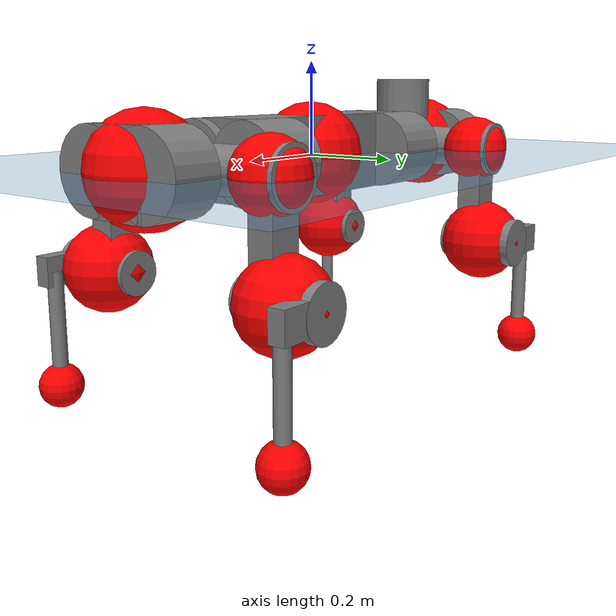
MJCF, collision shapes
<mujoco model="anymal_c">
  <compiler angle="radian" assetdir="assets" balanceinertia="true" inertiafromgeom="false"/>

  <option timestep="0.005" density="1.2" viscosity="2e-05"/>

  <size nkey="1"/>

  <visual>
    <quality shadowsize="8192"/>
    <map shadowclip="0.5"/>
  </visual>

  <default>
    <default class="/">
      <material specular="0" shininess="0.25"/>
      <geom contype="0" conaffinity="0" group="1" solref="-1000 -80"/>
      <site size="0.01 0.005 0.005" group="5"/>
      <general forcelimited="true" forcerange="-80 80" biastype="affine" gainprm="80" biasprm="0 -80 -2"/>
      <default class="anymal_c">
        <joint armature="0.01" damping="0.01" frictionloss="0.1"/>
        <default class="visual">
          <geom type="mesh" group="2"/>
          <default class="visual_zflip"/>
        </default>
        <default class="collision">
          <geom type="cylinder" group="3"/>
          <default class="foot">
            <geom size="0.03 0 0" type="sphere" condim="6" priority="1" friction="0.8 0.02 0.01" solimp="0.015 1 0.03"/>
          </default>
        </default>
      </default>
      <default class="reward_collision_sphere">
        <geom group="5" rgba="1 0 0 1"/>
      </default>
    </default>
  </default>

  <asset>
    <texture type="skybox" colorspace="auto" name="//unnamed_texture_0" builtin="gradient" rgb1="0.95 0.95 0.95" rgb2="0.95 0.95 0.95" width="100" height="600"/>
    <texture type="2d" colorspace="auto" name="texplane" builtin="checker" rgb1="0.345 0.575 0.748" rgb2="0.345 0.575 0.748" markrgb="1 1 1" width="512" height="512"/>
    <texture type="2d" colorspace="linear" name="base" file="base.png"/>
    <texture type="2d" colorspace="linear" name="top_shell" file="top_shell.png"/>
    <texture type="2d" colorspace="linear" name="bottom_shell" file="bottom_shell.png"/>
    <texture type="2d" colorspace="linear" name="remote" file="remote.png"/>
    <texture type="2d" colorspace="linear" name="hatch" file="hatch.png"/>
    <texture type="2d" colorspace="linear" name="handle" file="handle.png"/>
    <texture type="2d" colorspace="linear" name="face" file="face.png"/>
    <texture type="2d" colorspace="linear" name="battery" file="battery.png"/>
    <texture type="2d" colorspace="linear" name="lidar_cage" file="lidar_cage.png"/>
    <texture type="2d" colorspace="linear" name="depth_camera" file="depth_camera.png"/>
    <texture type="2d" colorspace="linear" name="wide_angle_camera" file="wide_angle_camera.png"/>
    <texture type="2d" colorspace="linear" name="lidar" file="lidar.png"/>
    <texture type="2d" colorspace="linear" name="drive" file="drive.png"/>
    <texture type="2d" colorspace="linear" name="hip_l" file="hip_l.png"/>
    <texture type="2d" colorspace="linear" name="shank_l" file="shank_l.png"/>
    <texture type="2d" colorspace="linear" name="foot" file="foot.png"/>
    <texture type="2d" colorspace="linear" name="thigh" file="thigh.png"/>
    <texture type="2d" colorspace="linear" name="shank_r" file="shank_r.png"/>
    <texture type="2d" colorspace="linear" name="hip_r" file="hip_r.png"/>
    <material name="MatPlane" class="/" texture="texplane" texuniform="true" texrepeat="2 2" specular="0.9" shininess="0.5"/>
    <material name="black_plastic" class="/" rgba="0.007 0.007 0.007 1"/>
    <material name="green" class="/" rgba="0.052 0.178 0.033 1"/>
    <material name="red" class="/" rgba="0.178 0.006 0.005 1"/>
    <material name="yellow" class="/" rgba="0.178 0.119 0.006 1"/>
    <material name="lwl" class="/" rgba="0.8 0.8 0.8 1"/>
    <material name="base" class="/" texture="base"/>
    <material name="top_shell" class="/" texture="top_shell"/>
    <material name="bottom_shell" class="/" texture="bottom_shell"/>
    <material name="hip_l" class="/" texture="hip_l"/>
    <material name="thigh" class="/" texture="thigh"/>
    <material name="shank_l" class="/" texture="shank_l"/>
    <material name="foot" class="/" texture="foot"/>
    <material name="hip_r" class="/" texture="hip_r"/>
    <material name="shank" class="/" texture="shank_r"/>
    <material name="hatch" class="/" texture="hatch"/>
    <material name="remote" class="/" texture="remote"/>
    <material name="handle" class="/" texture="handle"/>
    <material name="face" class="/" texture="face"/>
    <material name="depth_camera" class="/" texture="depth_camera"/>
    <material name="wide_angle_camera" class="/" texture="wide_angle_camera"/>
    <material name="battery" class="/" texture="battery"/>
    <material name="lidar_cage" class="/" texture="lidar_cage"/>
    <material name="lidar" class="/" texture="lidar"/>
    <material name="drive" class="/" texture="drive"/>
    <mesh name="base_0" class="/" file="base_0.obj"/>
    <mesh name="base_1" class="/" file="base_1.obj"/>
    <mesh name="base_2" class="/" file="base_2.obj"/>
    <mesh name="base_3" class="/" file="base_3.obj"/>
    <mesh name="base_4" class="/" file="base_4.obj"/>
    <mesh name="base_5" class="/" file="base_5.obj"/>
    <mesh name="top_shell" class="/" file="top_shell.obj"/>
    <mesh name="bottom_shell" class="/" file="bottom_shell.obj"/>
    <mesh name="remote" class="/" file="remote.obj"/>
    <mesh name="handle" class="/" file="handle.obj"/>
    <mesh name="face" class="/" file="face.obj"/>
    <mesh name="wide_angle_camera" class="/" file="wide_angle_camera.obj"/>
    <mesh name="depth_camera" class="/" file="depth_camera.obj"/>
    <mesh name="battery" class="/" file="battery.obj"/>
    <mesh name="lidar_cage" class="/" file="lidar_cage.obj"/>
    <mesh name="lidar" class="/" file="lidar.obj"/>
    <mesh name="drive" class="/" file="drive.obj"/>
    <mesh name="hip_l" class="/" file="hip_l.obj"/>
    <mesh name="thigh" class="/" file="thigh.obj"/>
    <mesh name="shank_l" class="/" file="shank_l.obj"/>
    <mesh name="foot" class="/" file="foot.obj"/>
    <mesh name="hip_r" class="/" file="hip_r.obj"/>
    <mesh name="hatch" class="/" file="hatch.obj"/>
    <mesh name="shank_r" class="/" file="shank_r.obj"/>
  </asset>

  <worldbody>
    <geom name="floor" class="/" size="100 100 0.125" type="plane" group="0" material="MatPlane"/>
    <light name="toplight_shadow" class="/" pos="0 0 5" dir="0.0990148 0.0990148 -0.990148" type="directional" ambient="0.04 0.04 0.04" diffuse="0.55 0.55 0.55" specular="0.12 0.12 0.12"/>
    <light name="toplight_fill" class="/" pos="0 0 5" dir="0.0990148 0.0990148 -0.990148" type="directional" castshadow="false" ambient="0.04 0.04 0.04" diffuse="0.3 0.3 0.3" specular="0.08 0.08 0.08"/>
    <body name="trunk" childclass="anymal_c" pos="0.00206575 -0.000827999 0.0046297" quat="0.999998 0.00107442 -0.000515834 -0.00141673">
      <inertial pos="0.00328434 -0.00217204 0.0322533" quat="0.505876 0.497027 0.509236 0.487578" mass="14.4572" diaginertia="0.718411 0.469063 0.0569302"/>
      <joint name="//unnamed_joint_0" type="free" armature="0" damping="0" frictionloss="0"/>
      <geom name="//unnamed_geom_1" class="visual" material="green" mesh="base_0"/>
      <geom name="//unnamed_geom_2" class="visual" material="yellow" mesh="base_1"/>
      <geom name="//unnamed_geom_3" class="visual" material="red" mesh="base_2"/>
      <geom name="//unnamed_geom_4" class="visual" material="black_plastic" mesh="base_3"/>
      <geom name="//unnamed_geom_5" class="visual" material="lwl" mesh="base_4"/>
      <geom name="//unnamed_geom_6" class="visual" material="base" mesh="base_5"/>
      <geom name="trunk_1" class="collision" size="0.268867 0.064899 0.0834416" type="box"/>
      <geom name="trunk_2" class="collision" size="0.0834416 0.0672168" pos="0.226898 0.067464 0" quat="0.707107 0 0.707107 0"/>
      <geom name="trunk_3" class="collision" size="0.0834416 0.0672168" pos="-0.226898 0.067464 0" quat="0.707107 0 0.707107 0"/>
      <geom name="trunk_4" class="collision" size="0.0834416 0.0672168" pos="0.226898 -0.067464 0" quat="0.707107 0 0.707107 0"/>
      <geom name="trunk_5" class="collision" size="0.0834416 0.0672168" pos="-0.226898 -0.067464 0" quat="0.707107 0 0.707107 0"/>
      <geom name="//unnamed_geom_12" class="visual" material="top_shell" mesh="top_shell"/>
      <geom name="//unnamed_geom_13" class="visual" material="bottom_shell" mesh="bottom_shell"/>
      <geom name="//unnamed_geom_14" class="visual" material="remote" mesh="remote"/>
      <geom name="//unnamed_geom_15" class="visual" material="handle" mesh="handle"/>
      <geom name="//unnamed_geom_16" class="visual" pos="0.432411 0 0" quat="1 0 0 0" material="face" mesh="face"/>
      <geom name="trunk_6" class="collision" size="0.0509921 0.064899 0.0834416" pos="0.489787 0 0" type="box"/>
      <geom name="//unnamed_geom_18" class="collision" size="0.0834416 0.0509921" pos="0.489787 0.067464 0" quat="0.707107 0 0.707107 0"/>
      <geom name="//unnamed_geom_19" class="collision" size="0.0834416 0.0509921" pos="0.489787 -0.067464 0" quat="0.707107 0 0.707107 0"/>
      <geom name="//unnamed_geom_20" class="visual" pos="0.481587 0 -0.0205697" quat="0.965926 0 0.258819 0" material="depth_camera" mesh="depth_camera"/>
      <geom name="//unnamed_geom_21" class="visual" pos="0.535167 0 0.0115928" material="wide_angle_camera" mesh="wide_angle_camera"/>
      <geom name="//unnamed_geom_22" class="visual_zflip" pos="-0.432411 0 0" quat="0 0 0 1" material="face" mesh="face"/>
      <geom name="trunk_7" class="collision" size="0.0509921 0.064899 0.0834416" pos="-0.489787 0 0" quat="0 0 0 1" type="box"/>
      <geom name="//unnamed_geom_24" class="collision" size="0.0834416 0.0509921" pos="-0.489787 -0.067464 0" quat="0 -0.707107 0 0.707107"/>
      <geom name="//unnamed_geom_25" class="collision" size="0.0834416 0.0509921" pos="-0.489787 0.067464 0" quat="0 -0.707107 0 0.707107"/>
      <geom name="//unnamed_geom_26" class="visual" pos="-0.481587 0 -0.0205697" quat="0 -0.258819 0 0.965926" material="depth_camera" mesh="depth_camera"/>
      <geom name="//unnamed_geom_27" class="visual_zflip" pos="-0.535167 0 0.0115928" quat="0 0 0 1" material="wide_angle_camera" mesh="wide_angle_camera"/>
      <geom name="//unnamed_geom_28" class="visual" material="battery" mesh="battery"/>
      <geom name="//unnamed_geom_29" class="visual" pos="0 0.0726364 0.0245394" quat="0.683013 -0.183013 0.183013 0.683013" material="depth_camera" mesh="depth_camera"/>
      <geom name="//unnamed_geom_30" class="visual" pos="0 -0.0726364 0.0245394" quat="0.683013 0.183013 0.183013 -0.683013" material="depth_camera" mesh="depth_camera"/>
      <geom name="//unnamed_geom_31" class="visual" pos="-0.379729 0 0.0569187" quat="1 0 0 0" material="lidar_cage" mesh="lidar_cage"/>
      <geom name="trunk_8" class="collision" size="0.064899 0.0556277" pos="-0.379729 0 0.103383"/>
      <geom name="//unnamed_geom_33" class="visual" pos="-0.379729 -3.12093e-05 0.11012" quat="0.707107 0 0 -0.707107" material="lidar" mesh="lidar"/>
      <geom name="//unnamed_geom_34" class="visual" pos="0.312859 0.100165 3.26663e-09" quat="0.258819 0.965926 0 0" material="drive" mesh="drive"/>
      <geom name="//unnamed_geom_35" class="visual" pos="0.312859 -0.100165 -3.26663e-09" quat="0.258819 -0.965926 0 0" material="drive" mesh="drive"/>
      <geom name="//unnamed_geom_36" class="visual" pos="-0.312859 0.100165 -3.26663e-09" quat="0 0 0.965926 -0.258819" material="drive" mesh="drive"/>
      <geom name="//unnamed_geom_37" class="visual" pos="-0.312859 -0.100165 3.26663e-09" quat="0 0 -0.965926 -0.258819" material="drive" mesh="drive"/>
      <geom name="//unnamed_geom_38" class="visual" pos="0.121012 0 0.0565315" quat="1 0 0 0" material="hatch" mesh="hatch"/>
      <geom name="//unnamed_geom_39" class="reward_collision_sphere" size="0.111255"/>
      <geom name="//unnamed_geom_40" class="reward_collision_sphere" size="0.111255" pos="0.469445 0 0"/>
      <geom name="//unnamed_geom_41" class="reward_collision_sphere" size="0.111255" pos="-0.469445 0 0"/>
      <site name="imu" pos="0.271904 0.0100441 0.0437852" size="0.00927129"/>
      <camera name="track" pos="0 -1.92754 0" quat="0.707107 0.707107 0 0" mode="trackcom"/>
      <camera name="ego_camera" pos="0.469445 0 -0.0309761" quat="-0.5 -0.5 0.5 0.5"/>
      <body name="LF_HIP" pos="0.31398 0.103139 0.000366157" quat="0.258849 0.965918 -1.97999e-05 -1.98569e-06">
        <inertial pos="0.0623442 -0.0152689 -0.00204712" quat="-0.110075 0.718704 -0.140531 0.672011" mass="2.20167" diaginertia="0.00709273 0.00394092 0.000907272"/>
        <joint name="LF_HAA" pos="0 0 0" axis="0.999907 0.00789012 -0.0111282" stiffness="0.000858042" range="-0.707889 0.506133" armature="0.0094158" damping="0.0123643" frictionloss="0.0966939"/>
        <geom name="//unnamed_geom_42" class="visual" pos="0 0.000192161 -3.15623e-05" quat="0.258819 -0.965926 0 0" material="hip_l" mesh="hip_l"/>
        <geom name="//unnamed_geom_43" class="visual" pos="0.0624883 -0.0746047 -0.0416724" quat="0.183013 -0.683013 0.683013 0.183013" material="drive" mesh="drive"/>
        <geom name="//unnamed_geom_44" class="collision" size="0.0463564 0.064899" pos="0.0624883 -0.0115265 -0.00534726" quat="-0.353553 -0.612372 0.612372 -0.353553"/>
        <body name="LF_THIGH" pos="0.0644811 -0.0701365 -0.0357047" quat="0.183046 -0.683014 0.683011 0.182982">
          <inertial pos="0.0323039 -0.000538035 -0.191006" quat="0.993166 0.00566202 -0.0833821 0.0814637" mass="2.60958" diaginertia="0.0398489 0.0256305 0.0012337"/>
          <joint name="LF_HFE" pos="0 0 0" axis="0.999999 0.000337943 -0.000957164" stiffness="0.000545135" range="-3.15582 3.13279" armature="0.00968473" damping="0.00406794" frictionloss="0.0933811"/>
          <geom name="//unnamed_geom_45" class="visual" pos="0.00158052 2.49052e-06 0" quat="0.707107 0 0 -0.707107" material="thigh" mesh="thigh"/>
          <geom name="//unnamed_geom_46" class="collision" size="0.0602634 0.0370851" pos="0.0417284 0 0" quat="0.5 0.5 -0.5 -0.5"/>
          <geom name="//unnamed_geom_47" class="collision" size="0.0347673 0.0278139 0.131016" pos="0.0312963 0 -0.109434" quat="0.707107 0 0 -0.707107" type="box"/>
          <geom name="//unnamed_geom_48" class="visual" pos="0.104634 0 -0.220705" quat="1 0 0 0" material="drive" mesh="drive"/>
          <geom name="//unnamed_geom_49" class="collision" size="0.0463564 0.064899" pos="0.0316093 0 -0.220705" quat="0.707107 0 0.707107 0"/>
          <geom name="//unnamed_geom_50" class="reward_collision_sphere" size="0.0741703" pos="0.0260803 0 0"/>
          <body name="LF_SHANK" pos="0.107816 -0.00213678 -0.220304" quat="1 -0.000119947 1.39386e-05 4.94638e-05">
            <inertial pos="0.011411 -0.0550203 -0.0629444" quat="0.992673 -0.118343 -0.00335927 -0.0241584" mass="0.462433" diaginertia="0.0130362 0.00780741 0.00031329"/>
            <joint name="LF_KFE" pos="0 0 0" axis="0.999994 -0.000460355 -0.00346355" range="-3.03067 3.14802" armature="0.00829697" damping="0" frictionloss="0.0695588"/>
            <geom name="//unnamed_geom_51" class="visual" pos="0.000515372 0.00274799 0" quat="0.707107 0 0 -0.707107" material="shank_l" mesh="shank_l"/>
            <geom name="LF_kfe_act" class="collision" size="0.0556277 0.0185426" pos="0.0208642 0 0" quat="0.5 0.5 -0.5 -0.5"/>
            <geom name="//unnamed_geom_53" class="collision" size="0.053309 0.0312906 0.0176154" pos="0.0208642 -0.0554159 0" quat="0.5 0.5 -0.5 -0.5" type="box"/>
            <geom name="//unnamed_geom_54" class="visual" pos="0.0136138 -0.0838782 -0.261725" quat="0.382683 0 0 -0.92388" material="foot" mesh="foot"/>
            <geom name="LF_calf" class="collision" size="0.0162248 0.130959" pos="0.0136139 -0.0847637 -0.130863" quat="0.707107 0 0 -0.707107"/>
            <geom name="LF_foot" class="foot" size="0.0316054" pos="0.0136139 -0.0847637 -0.244301" quat="0.707107 0 0 -0.707107"/>
            <geom name="//unnamed_geom_57" class="reward_collision_sphere" size="0.0927129" pos="-0.0521605 0 0"/>
            <geom name="//unnamed_geom_58" class="reward_collision_sphere" size="0.0463564" pos="0.0136139 -0.0847637 -0.244301"/>
            <site name="LF_foot" class="foot" pos="0.0136139 -0.0847637 -0.244301" quat="0.707107 0 0 -0.707107" size="0.00927129"/>
          </body>
        </body>
      </body>
      <body name="RF_HIP" pos="0.312493 -0.100689 0.00188457" quat="0.26024 -0.965542 -0.00163609 0.00145171">
        <inertial pos="0.0573295 0.015275 -0.00507551" quat="0.131938 0.668911 0.148763 0.716254" mass="2.02138" diaginertia="0.00724036 0.00397814 0.000914087"/>
        <joint name="RF_HAA" pos="0 0 0" axis="0.999997 0.00169104 0.00160237" stiffness="0.00736128" range="-0.400523 0.706106" armature="0.0103392" damping="0.00811682" frictionloss="0.0918771"/>
        <geom name="//unnamed_geom_59" class="visual" pos="0 -0.000192159 -3.15622e-05" quat="0.258819 0.965926 0 0" material="hip_r" mesh="hip_r"/>
        <geom name="//unnamed_geom_60" class="visual" pos="0.0624883 0.0746047 -0.0416724" quat="0.183013 0.683013 0.683013 -0.183013" material="drive" mesh="drive"/>
        <geom name="//unnamed_geom_61" class="collision" size="0.0463564 0.064899" pos="0.0624883 0.0115265 -0.00534726" quat="-0.353553 0.612372 0.612372 0.353553"/>
        <body name="RF_THIGH" pos="0.0626767 0.069489 -0.0348594" quat="0.183205 0.683228 0.682763 -0.182946">
          <inertial pos="0.0309485 -0.000827766 -0.191994" quat="0.992123 -0.00607447 -0.0756263 0.099682" mass="2.40647" diaginertia="0.0376516 0.0254928 0.00118978"/>
          <joint name="RF_HFE" pos="0 0 0" axis="0.999979 0.00257875 0.00586419" range="-3.14281 3.12923" armature="0.00848817" damping="0.036256" frictionloss="0.100599"/>
          <geom name="//unnamed_geom_62" class="visual" pos="0.00158052 2.49052e-06 0" quat="0.707107 0 0 -0.707107" material="thigh" mesh="thigh"/>
          <geom name="//unnamed_geom_63" class="collision" size="0.0602634 0.0370851" pos="0.0417284 0 0" quat="0.5 0.5 0.5 0.5"/>
          <geom name="//unnamed_geom_64" class="collision" size="0.0347673 0.0278139 0.131016" pos="0.0312963 0 -0.109434" quat="0.707107 0 0 0.707107" type="box"/>
          <geom name="//unnamed_geom_65" class="visual" pos="0.104634 0 -0.220705" quat="1 0 0 0" material="drive" mesh="drive"/>
          <geom name="//unnamed_geom_66" class="collision" size="0.0463564 0.064899" pos="0.0316093 0 -0.220705" quat="0.707107 0 0.707107 0"/>
          <geom name="//unnamed_geom_67" class="reward_collision_sphere" size="0.0741703" pos="0.0260803 0 0"/>
          <body name="RF_SHANK" pos="0.108551 0.00162949 -0.219531" quat="0.999999 0.000991328 0.000332754 0.000693691">
            <inertial pos="0.00353808 0.0624603 -0.0640615" quat="0.993702 0.10364 0.0184473 0.0384144" mass="0.475206" diaginertia="0.0129329 0.00773513 0.000325625"/>
            <joint name="RF_KFE" pos="0 0 0" axis="0.999896 -0.0132671 0.00564948" range="-3.12195 3.09519" armature="0.00977597" damping="0.0102017" frictionloss="0.0873062"/>
            <geom name="//unnamed_geom_68" class="visual" pos="0.000515369 -0.00274798 0" quat="0.707107 0 0 0.707107" material="shank" mesh="shank_r"/>
            <geom name="RF_kfe_act" class="collision" size="0.0556277 0.0185426" pos="0.0208642 0 0" quat="0.5 0.5 0.5 0.5"/>
            <geom name="//unnamed_geom_70" class="collision" size="0.053309 0.0312906 0.0176154" pos="0.0208642 0.0554159 0" quat="0.5 0.5 0.5 0.5" type="box"/>
            <geom name="//unnamed_geom_71" class="visual" pos="0.013614 0.0838782 -0.261725" quat="0.382683 0 0 0.92388" material="foot" mesh="foot"/>
            <geom name="RF_calf" class="collision" size="0.0162248 0.130959" pos="0.0136139 0.0847637 -0.130863" quat="0.707107 0 0 0.707107"/>
            <geom name="RF_foot" class="foot" size="0.0311284" pos="0.0136139 0.0847637 -0.244301" quat="0.707107 0 0 0.707107"/>
            <geom name="//unnamed_geom_74" class="reward_collision_sphere" size="0.0927129" pos="-0.0521605 0 0"/>
            <geom name="//unnamed_geom_75" class="reward_collision_sphere" size="0.0463564" pos="0.0136139 0.0847637 -0.244301"/>
            <site name="RF_foot" class="foot" pos="0.0136139 0.0847637 -0.244301" quat="0.707107 0 0 0.707107" size="0.00927129"/>
          </body>
        </body>
      </body>
      <body name="LH_HIP" pos="-0.311199 0.100871 -0.000520009" quat="0.000736906 0.00099391 0.965714 -0.259604">
        <inertial pos="0.0569042 0.0179239 -0.00173788" quat="0.126644 0.679351 0.12475 0.711956" mass="2.15236" diaginertia="0.00708942 0.00416149 0.000928101"/>
        <joint name="LH_HAA" pos="0 0 0" axis="0.999915 -0.013001 -0.0011109" stiffness="0.00292313" range="-0.435898 0.650554" armature="0.00814281" damping="0.012686" frictionloss="0.0960331"/>
        <geom name="//unnamed_geom_76" class="visual" pos="0 -0.000192159 -3.15622e-05" quat="-0.258819 -0.965926 0 0" material="hip_r" mesh="hip_r"/>
        <geom name="//unnamed_geom_77" class="visual" pos="0.0624883 0.0746047 -0.0416724" quat="0.183013 0.683013 0.683013 -0.183013" material="drive" mesh="drive"/>
        <geom name="//unnamed_geom_78" class="collision" size="0.0463564 0.064899" pos="0.0624883 0.0115265 -0.00534726" quat="-0.353553 0.612372 0.612372 0.353553"/>
        <body name="LH_THIGH" pos="0.0607545 0.0722439 -0.03864" quat="0.183423 0.682894 0.682959 -0.183244">
          <inertial pos="0.0268269 0.0010198 -0.185018" quat="0.992779 -0.00429429 -0.0806981 0.0886552" mass="2.2482" diaginertia="0.0330553 0.0237015 0.00107317"/>
          <joint name="LH_HFE" pos="0 0 0" axis="0.99969 0.021465 0.0126227" stiffness="0.000923073" range="-3.13793 3.15205" armature="0.0092431" damping="0.0345885" frictionloss="0.0994498"/>
          <geom name="//unnamed_geom_79" class="visual" pos="0.00158052 2.49052e-06 0" quat="0.707107 0 0 -0.707107" material="thigh" mesh="thigh"/>
          <geom name="//unnamed_geom_80" class="collision" size="0.0602634 0.0370851" pos="0.0417284 0 0" quat="0.5 0.5 -0.5 -0.5"/>
          <geom name="//unnamed_geom_81" class="collision" size="0.0347673 0.0278139 0.131016" pos="0.0312963 0 -0.109434" quat="0.707107 0 0 -0.707107" type="box"/>
          <geom name="//unnamed_geom_82" class="visual" pos="0.104634 0 -0.220705" quat="1 0 0 0" material="drive" mesh="drive"/>
          <geom name="//unnamed_geom_83" class="collision" size="0.0463564 0.064899" pos="0.0316093 0 -0.220705" quat="0.707107 0 0.707107 0"/>
          <geom name="//unnamed_geom_84" class="reward_collision_sphere" size="0.0741703" pos="0.0260803 0 0"/>
          <body name="LH_SHANK" pos="0.104366 -0.00153164 -0.218369" quat="1 0.000376466 -0.000454301 0.000572582">
            <inertial pos="0.0100265 0.058338 -0.0575511" quat="0.994565 0.102263 -0.00673772 0.0183649" mass="0.478549" diaginertia="0.0126219 0.00766691 0.000321438"/>
            <joint name="LH_KFE" pos="0 0 0" axis="0.99999 0.00230274 0.0037375" range="-3.10173 3.2532" armature="0.00766767" damping="0.0316764" frictionloss="0.0961385"/>
            <geom name="//unnamed_geom_85" class="visual" pos="0.000515369 -0.00274798 0" quat="-0.707107 0 0 -0.707107" material="shank" mesh="shank_r"/>
            <geom name="LH_kfe_act" class="collision" size="0.0556277 0.0185426" pos="0.0208642 0 0" quat="0.5 0.5 -0.5 -0.5"/>
            <geom name="//unnamed_geom_87" class="collision" size="0.053309 0.0312906 0.0176154" pos="0.0208642 0.0554159 0" quat="0.5 0.5 -0.5 -0.5" type="box"/>
            <geom name="//unnamed_geom_88" class="visual" pos="0.013614 0.0838782 -0.261725" quat="-0.382683 0 0 -0.92388" material="foot" mesh="foot"/>
            <geom name="LH_calf" class="collision" size="0.0162248 0.130959" pos="0.0136139 0.0847637 -0.130863" quat="0.707107 0 0 -0.707107"/>
            <geom name="LH_foot" class="foot" size="0.0293242" pos="0.0136139 0.0847637 -0.244301" quat="0.707107 0 0 -0.707107"/>
            <geom name="//unnamed_geom_91" class="reward_collision_sphere" size="0.0927129" pos="-0.0521605 0 0"/>
            <geom name="//unnamed_geom_92" class="reward_collision_sphere" size="0.0463564" pos="0.0136139 0.0847637 -0.244301"/>
            <site name="LH_foot" class="foot" pos="0.0136139 0.0847637 -0.244301" quat="0.707107 0 0 -0.707107" size="0.00927129"/>
          </body>
        </body>
      </body>
      <body name="RH_HIP" pos="-0.318363 -0.0997529 -0.00320626" quat="0.00069722 0.000422283 -0.965863 -0.25905">
        <inertial pos="0.0610198 -0.01501 -0.00687146" quat="-0.145048 0.70935 -0.134489 0.676533" mass="2.23843" diaginertia="0.00647849 0.00384877 0.000872422"/>
        <joint name="RH_HAA" pos="0 0 0" axis="0.999604 -0.0271866 0.00720313" range="-0.750147 0.487206" armature="0.00939389" damping="0.00734961" frictionloss="0.0675357"/>
        <geom name="//unnamed_geom_93" class="visual" pos="0 0.000192161 -3.15623e-05" quat="-0.258819 0.965926 0 0" material="hip_l" mesh="hip_l"/>
        <geom name="//unnamed_geom_94" class="visual" pos="0.0624883 -0.0746047 -0.0416724" quat="-0.183013 0.683013 -0.683013 -0.183013" material="drive" mesh="drive"/>
        <geom name="//unnamed_geom_95" class="collision" size="0.0463564 0.064899" pos="0.0624883 -0.0115265 -0.00534726" quat="0.353553 0.612372 -0.612372 0.353553"/>
        <body name="RH_THIGH" pos="0.0606766 -0.0701162 -0.0310691" quat="-0.182456 0.683862 -0.682391 -0.182718">
          <inertial pos="0.0339964 -0.00089271 -0.187231" quat="0.993341 -0.00569725 -0.0795968 0.0830985" mass="2.52974" diaginertia="0.0351124 0.0243234 0.00116715"/>
          <joint name="RH_HFE" pos="0 0 0" axis="0.999986 0.00475291 -0.00250595" stiffness="0.000472272" range="-3.14925 3.17235" armature="0.00888312" damping="0" frictionloss="0.0812329"/>
          <geom name="//unnamed_geom_96" class="visual" pos="0.00158052 2.49052e-06 0" quat="0.707107 0 0 -0.707107" material="thigh" mesh="thigh"/>
          <geom name="//unnamed_geom_97" class="collision" size="0.0602634 0.0370851" pos="0.0417284 0 0" quat="0.5 0.5 0.5 0.5"/>
          <geom name="//unnamed_geom_98" class="collision" size="0.0347673 0.0278139 0.131016" pos="0.0312963 0 -0.109434" quat="0.707107 0 0 0.707107" type="box"/>
          <geom name="//unnamed_geom_99" class="visual" pos="0.104634 0 -0.220705" quat="1 0 0 0" material="drive" mesh="drive"/>
          <geom name="//unnamed_geom_100" class="collision" size="0.0463564 0.064899" pos="0.0316093 0 -0.220705" quat="0.707107 0 0.707107 0"/>
          <geom name="//unnamed_geom_101" class="reward_collision_sphere" size="0.0741703" pos="0.0260803 0 0"/>
          <body name="RH_SHANK" pos="0.108966 -0.00115662 -0.219166" quat="0.999996 -0.000464732 -0.00252086 0.00118922">
            <inertial pos="0.00811663 -0.0593788 -0.0629087" quat="0.993345 -0.112964 0.0139811 -0.0175979" mass="0.455463" diaginertia="0.0122187 0.00778411 0.000327157"/>
            <joint name="RH_KFE" pos="0 0 0" axis="0.999655 -0.0133986 -0.0226026" stiffness="0.0169946" range="-3.19058 3.08959" armature="0.00891123" damping="0.0213006" frictionloss="0.0813208"/>
            <geom name="//unnamed_geom_102" class="visual" pos="0.000515372 0.00274799 0" quat="0.707107 0 0 -0.707107" material="shank_l" mesh="shank_l"/>
            <geom name="RH_kfe_act" class="collision" size="0.0556277 0.0185426" pos="0.0208642 0 0" quat="0.5 0.5 0.5 0.5"/>
            <geom name="//unnamed_geom_104" class="collision" size="0.053309 0.0312906 0.0176154" pos="0.0208642 -0.0554159 0" quat="0.5 0.5 0.5 0.5" type="box"/>
            <geom name="//unnamed_geom_105" class="visual" pos="0.0136138 -0.0838782 -0.261725" quat="0.382683 0 0 -0.92388" material="foot" mesh="foot"/>
            <geom name="RH_calf" class="collision" size="0.0162248 0.130959" pos="0.0136139 -0.0847637 -0.130863" quat="0.707107 0 0 0.707107"/>
            <geom name="RH_foot" class="foot" size="0.0226369" pos="0.0136139 -0.0847637 -0.244301" quat="0.707107 0 0 0.707107"/>
            <geom name="//unnamed_geom_108" class="reward_collision_sphere" size="0.0927129" pos="-0.0521605 0 0"/>
            <geom name="//unnamed_geom_109" class="reward_collision_sphere" size="0.0463564" pos="0.0136139 -0.0847637 -0.244301"/>
            <site name="RH_foot" class="foot" pos="0.0136139 -0.0847637 -0.244301" quat="0.707107 0 0 0.707107" size="0.00927129"/>
          </body>
        </body>
      </body>
    </body>
  </worldbody>

  <contact>
    <pair class="/" geom1="floor" geom2="LF_foot" name="//unnamed_contact_0"/>
    <pair class="/" geom1="floor" geom2="RF_foot" name="//unnamed_contact_1"/>
    <pair class="/" geom1="floor" geom2="LH_foot" name="//unnamed_contact_2"/>
    <pair class="/" geom1="floor" geom2="RH_foot" name="//unnamed_contact_3"/>
  </contact>

  <actuator>
    <general name="LF_HAA" class="/" joint="LF_HAA" forcerange="-77.1195 77.1195" gainprm="77.0794" biasprm="0 -77.0794 -2.10154"/>
    <general name="LF_HFE" class="/" joint="LF_HFE" forcerange="-82.0038 82.0038" gainprm="77.0794" biasprm="0 -77.0794 -2.10154"/>
    <general name="LF_KFE" class="/" joint="LF_KFE" forcerange="-75.7056 75.7056" gainprm="77.0794" biasprm="0 -77.0794 -2.10154"/>
    <general name="RF_HAA" class="/" joint="RF_HAA" forcerange="-68.5233 68.5233" gainprm="77.0794" biasprm="0 -77.0794 -2.10154"/>
    <general name="RF_HFE" class="/" joint="RF_HFE" forcerange="-77.3187 77.3187" gainprm="77.0794" biasprm="0 -77.0794 -2.10154"/>
    <general name="RF_KFE" class="/" joint="RF_KFE" forcerange="-76.6912 76.6912" gainprm="77.0794" biasprm="0 -77.0794 -2.10154"/>
    <general name="LH_HAA" class="/" joint="LH_HAA" forcerange="-76.266 76.266" gainprm="77.0794" biasprm="0 -77.0794 -2.10154"/>
    <general name="LH_HFE" class="/" joint="LH_HFE" forcerange="-86.7711 86.7711" gainprm="77.0794" biasprm="0 -77.0794 -2.10154"/>
    <general name="LH_KFE" class="/" joint="LH_KFE" forcerange="-65.2677 65.2677" gainprm="77.0794" biasprm="0 -77.0794 -2.10154"/>
    <general name="RH_HAA" class="/" joint="RH_HAA" forcerange="-74.3632 74.3632" gainprm="77.0794" biasprm="0 -77.0794 -2.10154"/>
    <general name="RH_HFE" class="/" joint="RH_HFE" forcerange="-68.9821 68.9821" gainprm="77.0794" biasprm="0 -77.0794 -2.10154"/>
    <general name="RH_KFE" class="/" joint="RH_KFE" forcerange="-75.0354 75.0354" gainprm="77.0794" biasprm="0 -77.0794 -2.10154"/>
  </actuator>

  <sensor>
    <gyro site="imu" name="imu_angular_velocity"/>
    <velocimeter site="imu" name="imu_linear_velocity"/>
    <framelinvel objtype="site" objname="LF_foot" name="LF_foot_global_linear_velocity"/>
    <framelinvel objtype="site" objname="RF_foot" name="RF_foot_global_linear_velocity"/>
    <framelinvel objtype="site" objname="LH_foot" name="LH_foot_global_linear_velocity"/>
    <framelinvel objtype="site" objname="RH_foot" name="RH_foot_global_linear_velocity"/>
  </sensor>

  <keyframe>
    <key name="home" qpos="0 0 0.55 1 0 0 0 0 0.4 -0.8 0 -0.4 0.8 0 -0.4 0.8 0 0.4 -0.8"/>
  </keyframe>
</mujoco>
